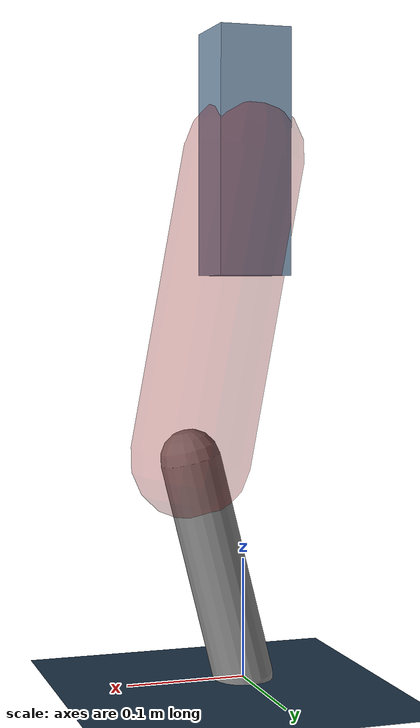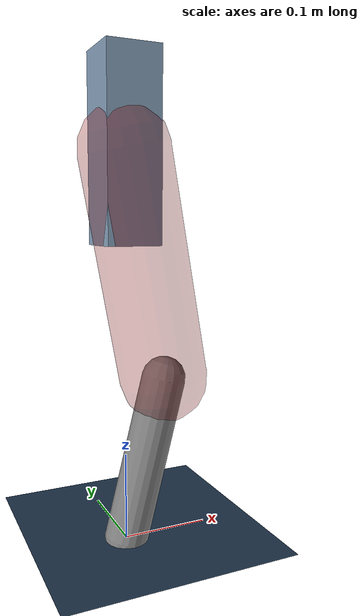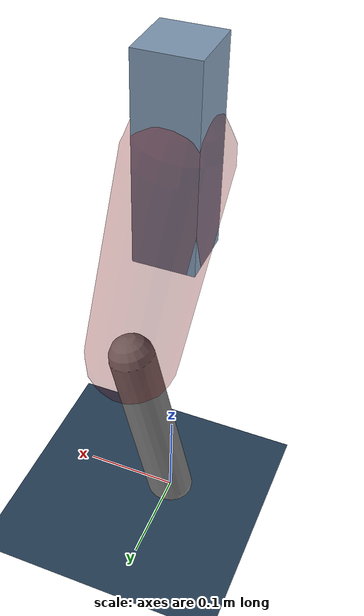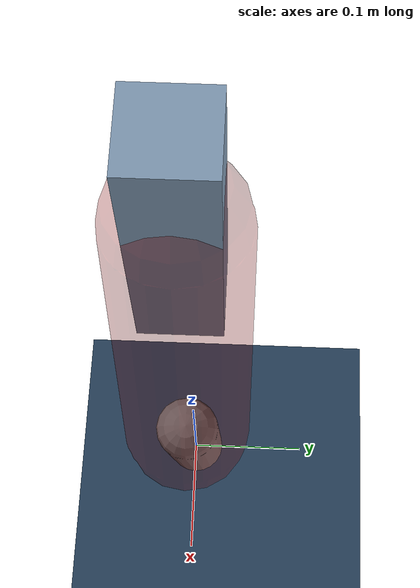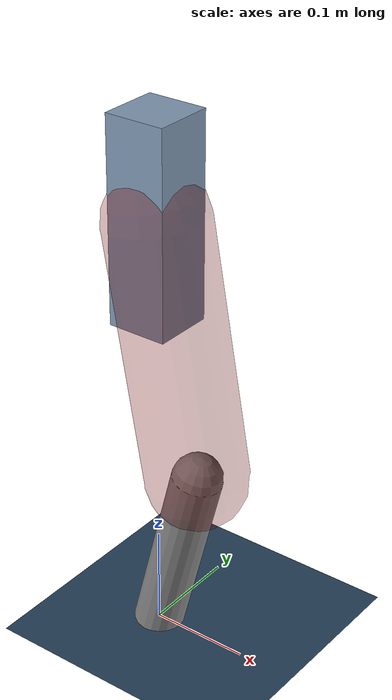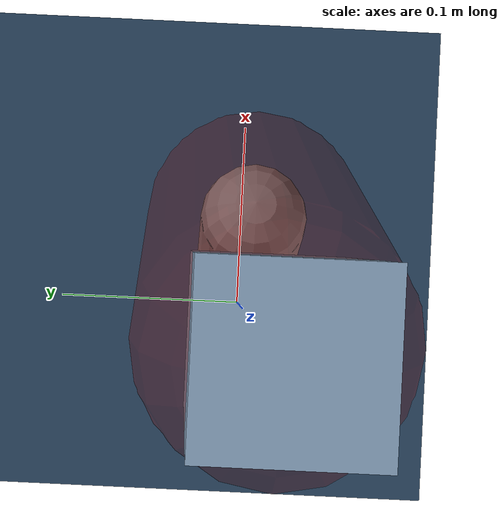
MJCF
<mujoco model="Hopper2D">
	<compiler inertiafromgeom="true" angle="radian" />
	<option timestep="0.001" integrator="implicit" cone="elliptic" solver="Newton" tolerance="1e-10" />

	<default>
		<geom contype="1" conaffinity="1" condim="3" friction="2 0.005 0.0001" solref="0.005 1" />
		<joint limited="true" damping="0.1" />
	</default>

	<asset>
		<texture name="skybox" type="skybox" builtin="gradient" rgb1=".4 .6 .8" rgb2="0 0 0" width="800" height="800" />
		<texture name="grid" type="2d" builtin="checker" rgb1=".1 .2 .3" rgb2=".2 .3 .4" width="300" height="300" mark="edge" markrgb=".2 .3 .4" />
		<material name="ground" texture="grid" texrepeat="1 1" texuniform="true" reflectance="0.1" />
		<material name="leg" rgba="0.5 0.6 0.7 1" />
	</asset>

	<worldbody>

		<geom name="floor" type="plane" size="5 5 0.25" material="ground" />

		<light directional="false" diffuse="0.8 0.8 0.8" specular="0.3 0.3 0.3" pos="0 0 2" dir="0 0 -1" />
		<light mode="targetbodycom" target="base" directional="false" diffuse="0.8 0.8 0.8" specular="0.3 0.3 0.3" pos="0 0 2" dir="0 0 -1" />

		<camera name="fixed" pos="0 -2 1" xyaxes="1 0 0 0 0 1" />
		<camera name="tracking" mode="trackcom" pos="0 -3 1" />

		<body name="root" pos="0 0 0.43598321325109746">
			<joint name="slide_x" type="slide" axis="1 0 0" range="-100 100" />
			<joint name="slide_z" type="slide" axis="0 0 1" range="0 10" />

			<body name="base" pos="0 0 0">
				<geom name="torso" type="box" size="0.03 0.03 0.1" mass="4.096" material="leg" />

				<body name="link1" pos="0 0 0" euler="0 1.387627764462353 0">
					<joint type="hinge" axis="0 -1 0" pos="0 0 0" name="hinge1" limited="true" range="-3.14 3.14" stiffness="0" damping="0.1" />
					<geom name="thigh" type="capsule" fromto="0 0 0 0.2550016099912391 0 0" size="0.05" rgba="0.5 0 0 0.3" mass="0.8694041859772216" />

					<body name="link2" pos="0.2550016099912391 0 0" euler="0 0.4288364648401111 0">
						<joint type="hinge" axis="0 -1 0" pos="0 0 0" name="hinge2" limited="true" range="-3.14 3.14" stiffness="0" damping="0.1" />
						<geom name="shank" type="capsule" fromto="0 0 0 0.19098160325985836 0 0" size="0.025" mass="0.3932834429338725" />

					</body>
				</body>
			</body>
		</body>
	</worldbody>

	<actuator>
		<motor name="torque1" joint="hinge1" ctrlrange="-266.84687053212593 266.84687053212593" ctrllimited="true" gear="1" />
		<motor name="torque2" joint="hinge2" ctrlrange="-103.72252154430934 103.72252154430934" ctrllimited="true" gear="1" />
	</actuator>
</mujoco>
